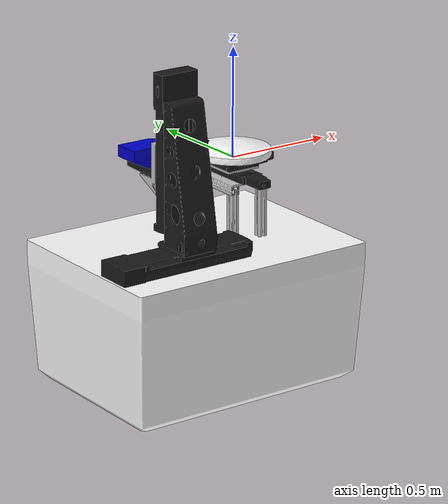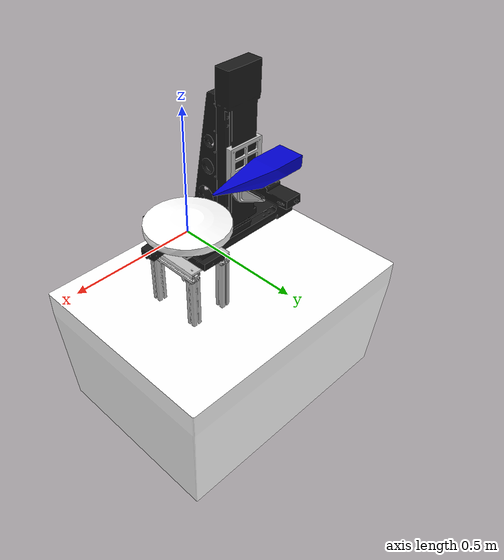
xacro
<?xml version="1.0" ?>
<robot name="" xmlns:xacro="http://wiki.ros.org/xacro">
  <!-- TX90 -->
  <xacro:include filename="$(find boroscope_gazebo)/urdf/boroscope_macro.xacro"/>

  <xacro:boroscope_robot prefix=""/>

  <!-- Fix robot to Gazebo world -->

  <link name="world"/>

  <joint name="world-base_link-fixed" type="fixed">
    <parent link="world"/>
    <child link="base_link"/>
    <origin xyz="0.0 0.0 0.0" rpy="0.0 0.0 0.0" />
  </joint>

</robot>

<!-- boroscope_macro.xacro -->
<robot xmlns:xacro="http://wiki.ros.org/xacro">
<xacro:include filename="$(find boroscope_support)/urdf/boroscope_macro.xacro"/>
  <xacro:macro name="boroscope_robot" params="prefix">

  <!-- get URDF description of Staubli TX90 model -->
  <xacro:boroscope prefix="${prefix}" />

<!-- solve fixed-joint problem in gazebo -->

  <!-- transmission list -->

  <transmission name="${prefix}tran1">
    <type>transmission_interface/SimpleTransmission</type>
    <joint name="horizontal_x">
      <hardwareInterface>hardware_interface/PositionJointInterface</hardwareInterface>
    </joint>
    <actuator name="${prefix}motor1">
      <mechanicalReduction>1</mechanicalReduction>
      <hardwareInterface>hardware_interface/PositionJointInterface</hardwareInterface>
    </actuator>
  </transmission>

  <transmission name="${prefix}tran2">
    <type>transmission_interface/SimpleTransmission</type>
    <joint name="horizontal_y">
      <hardwareInterface>hardware_interface/PositionJointInterface</hardwareInterface>
    </joint>
    <actuator name="${prefix}motor2">
      <mechanicalReduction>1</mechanicalReduction>
      <hardwareInterface>hardware_interface/PositionJointInterface</hardwareInterface>
    </actuator>
  </transmission>

  <transmission name="${prefix}tran3">
    <type>transmission_interface/SimpleTransmission</type>
    <joint name="vertical_z">
      <hardwareInterface>hardware_interface/PositionJointInterface</hardwareInterface>
    </joint>
    <actuator name="${prefix}motor3">
      <mechanicalReduction>1</mechanicalReduction>
      <hardwareInterface>hardware_interface/PositionJointInterface</hardwareInterface>
    </actuator>
  </transmission>

  <transmission name="${prefix}tran4">
    <type>transmission_interface/SimpleTransmission</type>
    <joint name="boro_theta">
      <hardwareInterface>hardware_interface/PositionJointInterface</hardwareInterface>
    </joint>
    <actuator name="${prefix}motor4">
      <mechanicalReduction>1</mechanicalReduction>
      <hardwareInterface>hardware_interface/PositionJointInterface</hardwareInterface>
    </actuator>
  </transmission>

  <transmission name="${prefix}tran5">
    <type>transmission_interface/SimpleTransmission</type>
    <joint name="blisk_rotate">
      <hardwareInterface>hardware_interface/PositionJointInterface</hardwareInterface>
    </joint>
    <actuator name="${prefix}motor5">
      <mechanicalReduction>1</mechanicalReduction>
      <hardwareInterface>hardware_interface/PositionJointInterface</hardwareInterface>
    </actuator>
  </transmission>
  <!-- end of transmission list -->

  <!-- Gazebo-specific link properties -->
  <gazebo reference="base_link">
    <material>Gazebo/Yellow</material>
    <turnGravityOff>true</turnGravityOff>
  </gazebo>
  <gazebo reference="test_object">
    <material>Gazebo/Yellow</material>
    <turnGravityOff>true</turnGravityOff>
  </gazebo>
  <gazebo reference="urs150bcc">
    <material>Gazebo/Yellow</material>
    <turnGravityOff>true</turnGravityOff>
  </gazebo>
  <gazebo reference="adapter_uts150cc_to_urs150bcc">
    <material>Gazebo/Yellow</material>
    <turnGravityOff>true</turnGravityOff>
  </gazebo>
  <gazebo reference="uts150cc">
    <material>Gazebo/Yellow</material>
    <turnGravityOff>true</turnGravityOff>
  </gazebo>
  <gazebo reference="adapter_table_to_uts150cc">
    <material>Gazebo/Grey</material>
    <turnGravityOff>true</turnGravityOff>
  </gazebo>
  <gazebo reference="optical_table">
    <material>Gazebo/Grey</material>
    <turnGravityOff>true</turnGravityOff>
  </gazebo>
  <gazebo reference="ims300pp">
    <material>Gazebo/Grey</material>
    <turnGravityOff>true</turnGravityOff>
  </gazebo>
  <gazebo reference="eq180">
    <material>Gazebo/Grey</material>
    <turnGravityOff>true</turnGravityOff>
  </gazebo>
  <gazebo reference="ims300v">
    <material>Gazebo/Grey</material>
    <turnGravityOff>true</turnGravityOff>
  </gazebo>
  <gazebo reference="adapter_ims300v_to_bgs80cc">
    <material>Gazebo/Grey</material>
    <turnGravityOff>true</turnGravityOff>
  </gazebo>
  <gazebo reference="bgs80cc">
    <material>Gazebo/Grey</material>
    <turnGravityOff>true</turnGravityOff>
  </gazebo>
  <gazebo reference="measuring_system">
    <material>Gazebo/Grey</material>
    <turnGravityOff>true</turnGravityOff>
  </gazebo>

  <!-- ros_control plugin -->
  <gazebo>
    <static>false</static>
    <plugin name="gazebo_ros_control" filename="libgazebo_ros_control.so">
      <robotNamespace>/</robotNamespace>
      <robotParam>robot_description</robotParam>
      <robotSimType>gazebo_ros_control/DefaultRobotHWSim</robotSimType>
      <legacyModeNS>true</legacyModeNS>
    </plugin>
  </gazebo>

  </xacro:macro>
</robot>

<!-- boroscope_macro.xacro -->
<!--Inertial calculated by ML from visual.stl
	Messsystem und Blisk reduced faces -->
<robot xmlns:xacro="http://wiki.ros.org/xacro">
  <xacro:macro name="boroscope" params="prefix">

   <material name="blue">
     <color rgba="0 0 0.8 1"/>
   </material>
   <material name="silver">
     <color rgba="0.75 0.75 0.75 1"/>
   </material>
   <material name="white">
     <color rgba="1 1 1 1"/>
   </material>
   <material name="green">
     <color rgba="0 0.8 0 1"/>
   </material>
   <material name="red">
     <color rgba="1 0 0 1"/>
   </material>
   <material name="black">
     <color rgba="0 0 0 1"/>
   </material>
   <material name="black_metal">
     <color rgba="0.1 0.1 0.1 1"/>
   </material>

  <link name="base_link">
    <!--origin xyz="0.0 0.0 0.0" rpy="0.0 0.0 0.0"/-->
  </link>

  <joint name="base_fixed" type="fixed">
    <parent link="base_link"/>
    <child link="test_object"/>
  </joint>

  <link name="test_object">
    <inertial>
     <origin xyz="0.0 0.0 0.03" rpy="0.0 0.0 0.0"/>
     <mass value="1.5"/>
     <inertia ixx="0.001"  ixy="0.001"  ixz="0.001" iyy="0.001" iyz="0.001" izz="0.001" />
    </inertial>
    <visual>
      <geometry>
        <mesh filename="package://boroscope_support/meshes/visual/test_object_hull.stl"/>
      </geometry>
      <origin xyz="0.0 0.0 0.0" rpy="0.0 0.0 0.0"/>
      <material name="white"/>
    </visual>
    <collision>
      <geometry>
        <mesh filename="package://boroscope_support/meshes/collision/test_object_hull.stl"/>
      </geometry>
      <origin xyz="0.0 0.0 0.0" rpy="0.0 0.0 0.0"/>
    </collision>
  </link>
<!--
Center of Mass is -0.0000003 -0.0000004 0.0313974
| 0.00000451719 0.00000000132 0.00000000004 |
| 0.00000000132 0.00000451874 0.00000000003 |
| 0.00000000004 0.00000000003 0.00000856920 |
-->
  <joint name="blisk_rotate" type="continuous">
    <parent link="test_object"/>
    <child link="urs150bcc"/>
    <axis xyz="0 1 0"/>
    <origin xyz="0 0 -0.0495" rpy="-1.5707963268 0 0"/>
    <limit effort="20" velocity="0.1"/>
    <dynamics damping="0.7" friction="0.0"/>
  </joint>

  <link name="urs150bcc">
    <inertial>
      <mass value="3.4" />
      <origin xyz="-0.01 0.02 0.0" rpy="0.0 0.0 0.0"/>
      <inertia ixx="0.001" ixy="-0.001" ixz="-0.001" iyy="0.001" iyz="0.001" izz="0.001" />
    </inertial>
    <visual>
      <geometry>
        <mesh filename="package://boroscope_support/meshes/visual/urs150bcc.stl"/>
      </geometry>
      <origin xyz="0.0 -0.015 0.0" rpy="3.14159265359 3.14159265359 0.0"/>
      <material name="black_metal"/>
    </visual>
    <collision>
      <geometry>
        <mesh filename="package://boroscope_support/meshes/collision/urs150bcc.stl"/>
      </geometry>
      <origin xyz="0.0 -0.015 0.0" rpy="3.14159265359 3.14159265359 0.0"/>
    </collision>
  </link>
<!--
Center of Mass is -0.0116940 0.0196918 -0.0000590
| 0.00000172461 -0.00000000484 -0.00000022568 |
| -0.00000000484 0.00000445441 0.00000000064 |
| -0.00000022568 0.00000000064 0.00000288061 |
-->
  <joint name="adapter_uts150cc_to_urs150bcc_fix" type="fixed">
    <parent link="urs150bcc"/>
    <child link="adapter_uts150cc_to_urs150bcc"/>
  </joint>

  <link name="adapter_uts150cc_to_urs150bcc">
    <inertial>
      <mass value="0.5" />
      <origin xyz="0.0 0.0 0.004" rpy="0.0 0.0 0.0"/>
      <inertia ixx="0.001" ixy="0.0" ixz="0.0" iyy="0.001" iyz="0.0" izz="0.001" />
    </inertial>
    <visual>
      <geometry>
        <mesh filename="package://boroscope_support/meshes/visual/adapter_uts150cc_to_urs150bcc.stl"/>
      </geometry>
      <origin xyz="0.0 -0.005 0.0" rpy="1.57 0.0 0.0"/>
      <material name="silver"/>
    </visual>
    <collision>
      <geometry>
        <mesh filename="package://boroscope_support/meshes/collision/adapter_uts150cc_to_urs150bcc.stl"/>
      </geometry>
      <origin xyz="0.0 -0.005 0.0" rpy="1.5707963268 0.0 0.0"/>
    </collision>
  </link>
<!--
Center of Mass is 0.0 0.0 0.0042625
| 0.00000063040 0.0 0.0 |
| 0.000000 0.00000063040 -0.000000 |
| 0.000000 -0.000000 0.00000125320 |
-->
  <joint name="horizontal_y" type="prismatic">
    <parent link="adapter_uts150cc_to_urs150bcc"/>
    <child link="uts150cc"/>
    <axis xyz="0.0 1.0 0.0"/>
    <origin xyz="0.0 0.302 0.0" rpy="1.5707963267948966 0.0 0.0"/>
    <limit effort="100" velocity="0.2" lower="-0.05" upper="0.05"/>
    <dynamics damping="0.8" friction="0.0"/>
  </joint>

  <link name="uts150cc">
    <inertial>
      <mass value="3.2" />
      <origin xyz="0.04 0.02 0.001" rpy="0.0 0.0 0.0"/>
      <inertia ixx="0.0001" ixy="0.0" ixz="0.0" iyy="0.00001453514" iyz="0.0" izz="0.00001371513" />
    </inertial>
    <visual>
      <geometry>
        <mesh filename="package://boroscope_support/meshes/visual/uts150cc.stl"/>
      </geometry>
      <origin xyz="0.0 0.0 0.27" rpy="1.5707963268 0.0 -1.5707963268"/>
      <material name="black_metal"/>
    </visual>
    <collision>
      <geometry>
        <mesh filename="package://boroscope_support/meshes/collision/uts150cc.stl"/>
      </geometry>
      <origin xyz="0.0 0.0 0.27" rpy="1.5707963268 0.0 -1.5707963268"/>
    </collision>
  </link>
<!--
Center of Mass is 0.0433911 0.0157576 0.0011992
| 0.00000100727 -0.00000010964 -0.00000022481 |
| -0.00000010964 0.00001453514 -0.00000000301 |
| -0.00000022481 -0.00000000301 0.00001371513 |
-->
  <joint name="yachse_fix" type="fixed">
    <parent link="uts150cc"/>
    <child link="adapter_table_to_uts150cc"/>
  </joint>

  <link name="adapter_table_to_uts150cc">
    <inertial>
      <mass value="2.0" />
      <origin xyz="-0.0000026 0.0000017 -0.1943206" rpy="0.0 0.0 0.0"/>
      <inertia ixx="0.00002034932" ixy="0.0" ixz="0.0" iyy="0.00001667426" iyz="0.00000000011" izz="0.00001776034" />
    </inertial>
    <visual>
      <geometry>
        <mesh filename="package://boroscope_support/meshes/visual/adapter_table_to_uts150cc.stl"/>
      </geometry>
      <origin xyz="0.0 0.0 0.0" rpy="0.0 3.14159265359 0.0"/>
      <material name="silver"/>
    </visual>
    <collision>
      <geometry>
        <mesh filename="package://boroscope_support/meshes/collision/adapter_table_to_uts150cc.stl"/>
      </geometry>
      <origin xyz="0.0 0.0 0.0" rpy="0.0 3.14159265359 0.0"/>
    </collision>
  </link>
<!--
Center of Mass is -0.0000026 0.0000017 -0.1943206
| 0.00002034932 -0.00000000019 -0.00000000017 |
| -0.00000000019 0.00001667426 0.00000000011 |
| -0.00000000017 0.00000000011 0.00001776034 |
-->
    <!-- verschiebt den y-adapter auf dem tisch -->
  <joint name="optical_table_fix" type="fixed">
    <parent link="adapter_table_to_uts150cc"/>
    <child link="optical_table"/>
    <origin xyz="-0.2 0.0 0.0" rpy="0.0 0.0 0.0"/>
  </joint>

  <link name="optical_table">
    <inertial>
      <mass value="200" />
      <origin xyz="-0.0000913 -0.0017799 0.570549" rpy="0.0 0.0 0.0"/>
      <inertia ixx="0.00936551270" ixy="0.0" ixz="0.0" iyy="0.01651688232" iyz="0.0" izz="0.02397763916" />
    </inertial>
    <visual>
      <geometry>
        <mesh filename="package://boroscope_support/meshes/visual/optical_table_top.stl"/>
      </geometry>
      <origin xyz="0.0 0.0 0.0" rpy="1.5707963268 0.0 3.14159265359"/>
      <material name="white"/>
    </visual>
    <collision>
      <geometry>
        <mesh filename="package://boroscope_support/meshes/collision/optical_table_top.stl"/>
      </geometry>
      <origin xyz="0.0 0.0 0.0" rpy="1.5707963268 0.0 3.14159265359"/>
    </collision>
  </link>
<!--
Center of Mass is -0.0000913 -0.0017799 0.570549
| 0.00936551270 -0.00000000093 0.00000021372 |
| -0.00000000093 0.01651688232 -0.00009247907 |
| 0.00000021372 -0.00009247907 0.02397763916 |
-->
  <joint name="ims300pp_fix" type="fixed">
    <parent link="optical_table"/>
    <child link="ims300pp"/>
    <origin xyz="-0.2 -0.225 0.0" rpy="0.0 0.0 0.0"/>
  </joint>

  <link name="ims300pp">
    <inertial>
      <mass value="17" />
      <origin xyz="0.0000137 0.0349893 -0.0755816" rpy="0.0 0.0 0.0"/>
      <inertia ixx="0.00025458153" ixy="-0.00000000152" ixz="0.00000003262" iyy="0.00026897188" iyz="0.00000121938" izz="0.00002188012" />
    </inertial>
    <visual>
      <geometry>
        <mesh filename="package://boroscope_support/meshes/visual/ims300pp.stl"/>
      </geometry>
      <origin xyz="0.0 0.0 0.0" rpy="1.5707963268 0.0 1.5707963268"/>
      <material name="black_metal"/>
    </visual>
    <collision>
      <geometry>
        <mesh filename="package://boroscope_support/meshes/collision/ims300pp.stl"/>
      </geometry>
      <origin xyz="0.0 0.0 0.0" rpy="1.5707963268 0.0 1.5707963268"/>
    </collision>
  </link>
<!--
Center of Mass is 0.0000137 0.0349893 -0.0755816
| 0.00025458153 -0.00000000152 0.00000003262 |
| -0.000152 0.00026897188 0.00000121938 |
| 0.00000003262 0.00000121938 0.00002188012 |
-->

  <link name="eq180">
    <inertial>
      <mass value="10" />
      <origin xyz="0.024 0.24 0.0" rpy="0.0 0.0 0.0"/>
      <inertia ixx="0.00014322014" ixy="0.0" ixz="0.0" iyy="0.00002195410" iyz="0.00000000129" izz="0.00013556930" />
    </inertial>
    <visual>
      <geometry>
        <mesh filename="package://boroscope_support/meshes/visual/eq180.stl"/>
      </geometry>
      <origin xyz="-0.03 0.0 0.0" rpy="0.0 0.0 0.0"/>
      <material name="black_metal"/>
    </visual>
    <collision>
      <geometry>
        <mesh filename="package://boroscope_support/meshes/collision/eq180.stl"/>
      </geometry>
      <origin xyz="-0.03 0.0 0.0" rpy="0.0 0.0 0.0"/>
    </collision>
  </link>
<!--
Center of Mass is 0.0220897 0.2415544 0.0000018
| 0.00014322014 -0.00000825648 -0.00000000029 |
| -0.00000825648 0.00002195410 0.00000000129 |
| -0.00000000029 0.00000000129 0.00013556930 |
-->
  <joint name="horizontal_x" type="prismatic">
    <parent link="ims300pp"/>
    <child link="eq180"/>
    <axis xyz="0 0 1"/>
    <origin xyz="-0.009 0.0 0.077" rpy="1.5707963268 0.0 1.5707963268"/>
    <limit effort="100" velocity="0.2" lower="-0.15" upper="0.15"/>
    <dynamics damping="0.7" friction="0.0"/>
  </joint>

  <link name="ims300v">
    <inertial>
      <mass value="17" />
      <origin xyz="-0.0000280 0.0292184 -0.1741412" rpy="0.0 0.0 0.0"/>
      <inertia ixx="0.00030001408" ixy="0.00000000769" ixz="0" iyy="0.00031521254" iyz="0" izz="0.0001983247" />
    </inertial>
    <visual>
      <geometry>
        <mesh filename="package://boroscope_support/meshes/visual/ims300v.stl"/>
      </geometry>
      <origin xyz="0.045 0.62 0.0" rpy="-1.5707963268 -1.5707963268 0"/>
      <material name="black_metal"/>
    </visual>
    <collision>
      <geometry>
        <mesh filename="package://boroscope_support/meshes/collision/ims300v.stl"/>
      </geometry>
      <origin xyz="0.045 0.62 0.0" rpy="-1.5707963268 -1.5707963268 0.0"/>
    </collision>
  </link>
<!--
Center of Mass is -0.0000280 0.0292184 -0.1741412
| 0.00030001408 0.00000000769 -0.00000000706 |
| 0.00000000769 0.00031521254 -0.00000471805 |
| -0.00000000706 -0.00000471805 0.00001983247 |
-->
  <joint name="fixed_vertical" type="fixed">
    <parent link="eq180"/>
    <child link="ims300v"/>
  </joint>

  <link name="adapter_ims300v_to_bgs80cc">
    <inertial>
      <mass value="0.9" />
      <origin xyz="0.0039713 0.0278695 0.0001491" rpy="0.0 0.0 0.0"/>
      <inertia ixx="0.00000598275" ixy="0" ixz="0" iyy="0.00000298925" iyz="0" izz="0.00000433954" />
    </inertial>
    <visual>
      <geometry>
        <mesh filename="package://boroscope_support/meshes/visual/adapter_ims300v_to_bgs80cc.stl"/>
      </geometry>
      <origin xyz="0.0 0.0 0.0" rpy="-1.5707963268 0.0 0.0"/>
      <material name="silver"/>
    </visual>
    <collision>
      <geometry>
        <mesh filename="package://boroscope_support/meshes/collision/adapter_ims300v_to_bgs80cc.stl"/>
      </geometry>
      <origin xyz="0.0 0.0 0.0" rpy="-1.5707963268 0.0 0.0"/>
    </collision>
  </link>
<!--
Center of Mass is 0.0039713 0.0278695 0.0001491
| 0.00000598275 -0.00000067673 -0.00000000739 |
| -0.00000067673 0.00000298925 -0.00000001071 |
| -0.000739 -0.00000001071 0.00000433954 |
-->
  <joint name="vertical_z" type="prismatic">
    <parent link="ims300v"/>
    <child link="adapter_ims300v_to_bgs80cc"/>
    <axis xyz="0 0 1"/>
    <origin xyz="0.1228 0.3615 0.0" rpy="-1.5707963268 0.0 0.0"/>
    <limit effort="100" velocity="0.2" lower="-0.15" upper="0.15"/>
    <dynamics damping="0.8" friction="0.0"/>
  </joint>

  <link name="bgs80cc">
    <inertial>
      <mass value="2.1" />
      <origin xyz="0.0483037 -0.0776729 -0.0000207" rpy="0.0 0.0 0.0"/>
      <inertia ixx="0.00000056433" ixy="0.00000002554" ixz="0.00000000244" iyy="0.00000397034" iyz="0.00000000006" izz="0.00000366163" />
    </inertial>
    <visual>
      <geometry>
        <mesh filename="package://boroscope_support/meshes/visual/bgs80cc.stl"/>
      </geometry>
      <origin xyz="0.1007 0.0 0.01" rpy="1.5707963268 0.0 0.0"/>
      <material name="black_metal"/>
    </visual>
    <collision>
      <geometry>
        <mesh filename="package://boroscope_support/meshes/collision/bgs80cc.stl"/>
      </geometry>
      <origin xyz="0.1007 0.0 0.01" rpy="1.5707963268 0.0 0.0"/>
    </collision>
  </link>
<!--
Center of Mass is 0.0483037 -0.0776729 -0.0000207
| 0.00000056433 0.00000002554 0.00000000244 |
| 0.00000002554 0.00000397034 0.00000000006 |
| 0.00000000244 0.00000000006 0.00000366163 |
-->
  <joint name="fix_go" type="fixed">
    <parent link="adapter_ims300v_to_bgs80cc"/>
    <child link="bgs80cc"/>
  </joint>

  <link name="measuring_system">
    <inertial>
      <mass value="1.5" />
      <origin xyz="0.0180561 -0.0098927 -0.0546269" rpy="0.0 0.0 0.0"/>
      <inertia ixx="0.00000147864" ixy="0" ixz="0.00000028363" iyy="0.00000166953" iyz="0.00000021929" izz="0.00000065700" />
    </inertial>
    <visual>
      <geometry>
        <mesh filename="package://boroscope_support/meshes/visual/measuring_system_hull.stl"/>
      </geometry>
      <origin xyz="0.0 0.0 0.0" rpy=" 0.0 0.0 0.0"/>
      <material name="blue"/>
    </visual>
    <collision>
      <geometry>
        <mesh filename="package://boroscope_support/meshes/collision/measuring_system_hull.stl"/>
      </geometry>
      <origin xyz="0.0 0.0 0.0" rpy=" 0.0 0.0 0.0"/>
    </collision>
  </link>
<!--
Center of Mass is 0.0180561 -0.0098927 -0.0546269
| 0.00000147864 -0.00000007280 0.00000028363 |
| -0.00000007280 0.00000166953 0.00000021929 |
| 0.000000028363 0.00000021929 0.00000065700 |
-->
  <joint name="boro_theta" type="revolute">
    <parent link="bgs80cc"/>
    <child link="measuring_system"/>
    <axis xyz="0 0 1"/>
    <origin xyz="0.1007 0.0 0.01" rpy="1.5707963268 0.0 0.0"/>
    <limit effort="0.01" velocity="0.1" lower="-0.6" upper="0.6"/>
    <dynamics damping="0.7" friction="0.0"/>
  </joint>

  </xacro:macro>
</robot>
